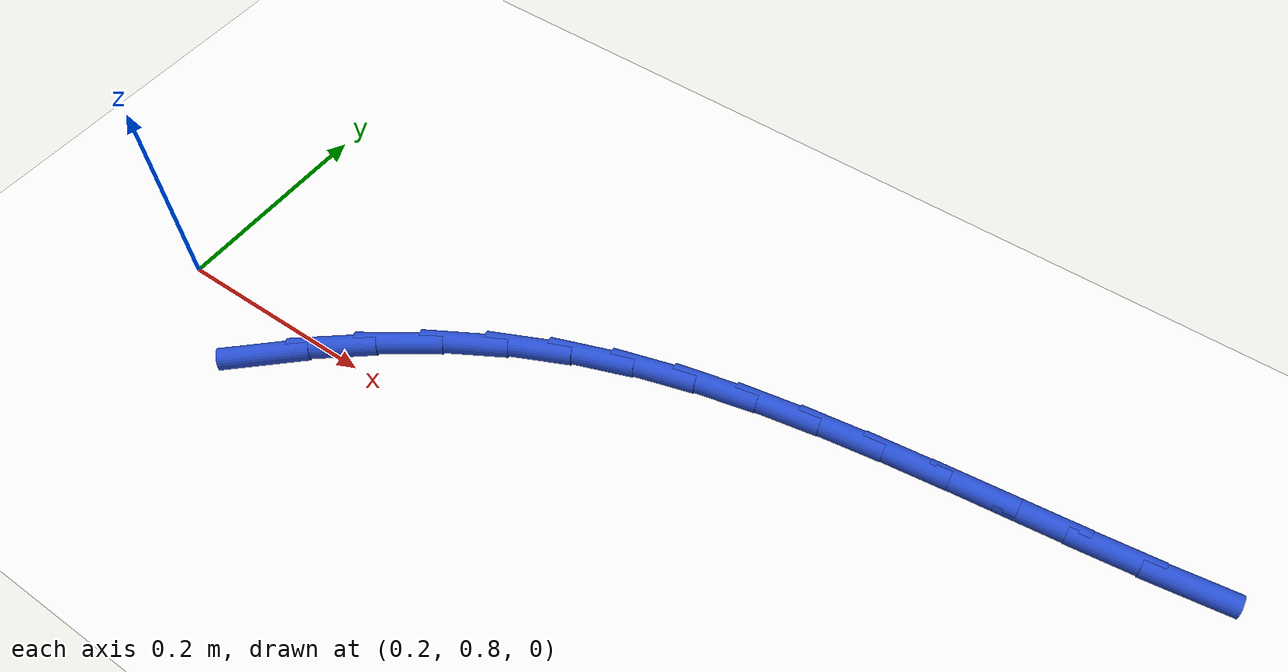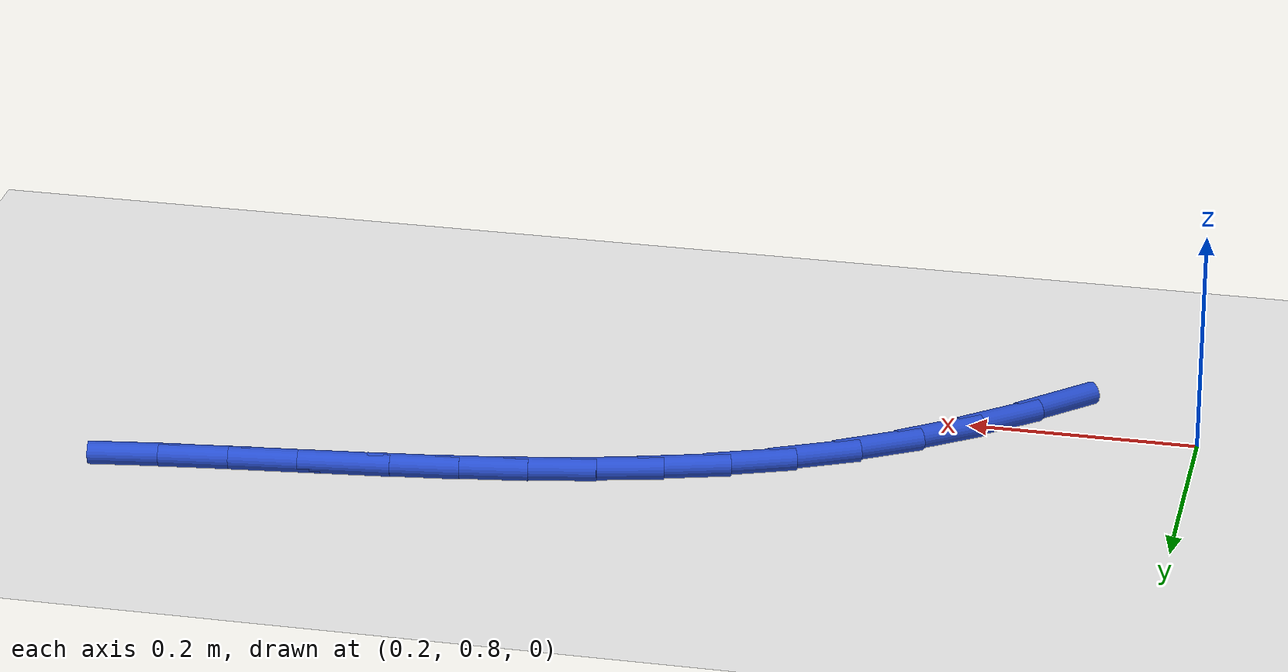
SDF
<sdf version="1.6">
 <world name="default">
  <model name="ground_plane">
   <static>1</static>
   <link name="link">
    <collision name="collision">
     <geometry><plane><normal>0 0 1</normal><size>100 100</size></plane></geometry>
     <surface><friction><ode><mu>100</mu><mu2>50</mu2></ode></friction></surface>
    </collision>
    <visual name="visual">
     <cast_shadows>0</cast_shadows>
     <geometry><plane><normal>0 0 1</normal><size>100 100</size></plane></geometry>
     <material>
      <script><uri>file://media/materials/scripts/gazebo.material</uri><name>Gazebo/WhiteGlow</name></script>
     </material>
    </visual>
   </link>
  </model>
  <model name="line">
   <link name="link_14">
    <pose>0.32917232432353305 0.7607423872514765 0.01 0 1.57 0.7416822931132596</pose>
    <collision name="collision">
     <geometry><cylinder><radius>0.01</radius><length>0.08</length></cylinder></geometry>
    </collision>
    <visual name="visual">
     <material>
      <script><name>Gazebo/Blue</name><uri>file://media/materials/scripts/gazebo.material</uri></script>
     </material>
     <geometry><cylinder><radius>0.01</radius><length>0.08</length></cylinder></geometry>
    </visual>
   </link>
   <link name="link_15">
    <pose>0.3737267148451764 0.801562191229716 0.01 0 1.57 0.6727538604862452</pose>
    <collision name="collision">
     <geometry><cylinder><radius>0.01</radius><length>0.08</length></cylinder></geometry>
    </collision>
    <visual name="visual">
     <material>
      <script><name>Gazebo/Blue</name><uri>file://media/materials/scripts/gazebo.material</uri></script>
     </material>
     <geometry><cylinder><radius>0.01</radius><length>0.08</length></cylinder></geometry>
    </visual>
   </link>
   <link name="link_16">
    <pose>0.42041091638203787 0.8387576585878747 0.01 0 1.57 0.5980623597929842</pose>
    <collision name="collision">
     <geometry><cylinder><radius>0.01</radius><length>0.08</length></cylinder></geometry>
    </collision>
    <visual name="visual">
     <material>
      <script><name>Gazebo/Blue</name><uri>file://media/materials/scripts/gazebo.material</uri></script>
     </material>
     <geometry><cylinder><radius>0.01</radius><length>0.08</length></cylinder></geometry>
    </visual>
   </link>
   <link name="link_17">
    <pose>0.4690853973969794 0.8719193893180062 0.01 0 1.57 0.5168608660060912</pose>
    <collision name="collision">
     <geometry><cylinder><radius>0.01</radius><length>0.08</length></cylinder></geometry>
    </collision>
    <visual name="visual">
     <material>
      <script><name>Gazebo/Blue</name><uri>file://media/materials/scripts/gazebo.material</uri></script>
     </material>
     <geometry><cylinder><radius>0.01</radius><length>0.08</length></cylinder></geometry>
    </visual>
   </link>
   <link name="link_18">
    <pose>0.5196106263528628 0.9006379834121642 0.01 0 1.57 0.42953666243389443</pose>
    <collision name="collision">
     <geometry><cylinder><radius>0.01</radius><length>0.08</length></cylinder></geometry>
    </collision>
    <visual name="visual">
     <material>
      <script><name>Gazebo/Blue</name><uri>file://media/materials/scripts/gazebo.material</uri></script>
     </material>
     <geometry><cylinder><radius>0.01</radius><length>0.08</length></cylinder></geometry>
    </visual>
   </link>
   <link name="link_19">
    <pose>0.5718466130342192 0.9245652177397866 0.01 0 1.57 0.3463660791445838</pose>
    <collision name="collision">
     <geometry><cylinder><radius>0.01</radius><length>0.08</length></cylinder></geometry>
    </collision>
    <visual name="visual">
     <material>
      <script><name>Gazebo/Blue</name><uri>file://media/materials/scripts/gazebo.material</uri></script>
     </material>
     <geometry><cylinder><radius>0.01</radius><length>0.08</length></cylinder></geometry>
    </visual>
   </link>
   <link name="link_20">
    <pose>0.6256486411211101 0.9439832201029837 0.01 0 1.57 0.2746948888140468</pose>
    <collision name="collision">
     <geometry><cylinder><radius>0.01</radius><length>0.08</length></cylinder></geometry>
    </collision>
    <visual name="visual">
     <material>
      <script><name>Gazebo/Blue</name><uri>file://media/materials/scripts/gazebo.material</uri></script>
     </material>
     <geometry><cylinder><radius>0.01</radius><length>0.08</length></cylinder></geometry>
    </visual>
   </link>
   <link name="link_21">
    <pose>0.6808692102872806 0.9595454391219513 0.01 0 1.57 0.2154781523947315</pose>
    <collision name="collision">
     <geometry><cylinder><radius>0.01</radius><length>0.08</length></cylinder></geometry>
    </collision>
    <visual name="visual">
     <material>
      <script><name>Gazebo/Blue</name><uri>file://media/materials/scripts/gazebo.material</uri></script>
     </material>
     <geometry><cylinder><radius>0.01</radius><length>0.08</length></cylinder></geometry>
    </visual>
   </link>
   <link name="link_22">
    <pose>0.7373607843838199 0.9719101013148849 0.01 0 1.57 0.1689092498649669</pose>
    <collision name="collision">
     <geometry><cylinder><radius>0.01</radius><length>0.08</length></cylinder></geometry>
    </collision>
    <visual name="visual">
     <material>
      <script><name>Gazebo/Blue</name><uri>file://media/materials/scripts/gazebo.material</uri></script>
     </material>
     <geometry><cylinder><radius>0.01</radius><length>0.08</length></cylinder></geometry>
    </visual>
   </link>
   <link name="link_23">
    <pose>0.7949758272618161 0.9817354331999799 0.01 0 1.57 0.13476607304117477</pose>
    <collision name="collision">
     <geometry><cylinder><radius>0.01</radius><length>0.08</length></cylinder></geometry>
    </collision>
    <visual name="visual">
     <material>
      <script><name>Gazebo/Blue</name><uri>file://media/materials/scripts/gazebo.material</uri></script>
     </material>
     <geometry><cylinder><radius>0.01</radius><length>0.08</length></cylinder></geometry>
    </visual>
   </link>
   <link name="link_24">
    <pose>0.8535668027723582 0.9896796612954318 0.01 0 1.57 0.11263837083167914</pose>
    <collision name="collision">
     <geometry><cylinder><radius>0.01</radius><length>0.08</length></cylinder></geometry>
    </collision>
    <visual name="visual">
     <material>
      <script><name>Gazebo/Blue</name><uri>file://media/materials/scripts/gazebo.material</uri></script>
     </material>
     <geometry><cylinder><radius>0.01</radius><length>0.08</length></cylinder></geometry>
    </visual>
   </link>
   <link name="link_25">
    <pose>0.9129861747665342 0.9964010121194355 0.01 0 1.57 0.1020844372671813</pose>
    <collision name="collision">
     <geometry><cylinder><radius>0.01</radius><length>0.08</length></cylinder></geometry>
    </collision>
    <visual name="visual">
     <material>
      <script><name>Gazebo/Blue</name><uri>file://media/materials/scripts/gazebo.material</uri></script>
     </material>
     <geometry><cylinder><radius>0.01</radius><length>0.08</length></cylinder></geometry>
    </visual>
   </link>
   <link name="link_26">
    <pose>0.973086407095433 1.0025577121901872 0.01 0 1.57 0.10271997349153297</pose>
    <collision name="collision">
     <geometry><cylinder><radius>0.01</radius><length>0.08</length></cylinder></geometry>
    </collision>
    <visual name="visual">
     <material>
      <script><name>Gazebo/Blue</name><uri>file://media/materials/scripts/gazebo.material</uri></script>
     </material>
     <geometry><cylinder><radius>0.01</radius><length>0.08</length></cylinder></geometry>
    </visual>
   </link>
   <link name="link_27">
    <pose>1.0337199636101428 1.0088079880258811 0.01 0 1.57 0.11425203515678173</pose>
    <collision name="collision">
     <geometry><cylinder><radius>0.01</radius><length>0.08</length></cylinder></geometry>
    </collision>
    <visual name="visual">
     <material>
      <script><name>Gazebo/Blue</name><uri>file://media/materials/scripts/gazebo.material</uri></script>
     </material>
     <geometry><cylinder><radius>0.01</radius><length>0.08</length></cylinder></geometry>
    </visual>
   </link>
   <link name="link_28">
    <pose>1.094739308161753 1.015810066144714 0.01 0 1.57 0.13646992339520458</pose>
    <collision name="collision">
     <geometry><cylinder><radius>0.01</radius><length>0.08</length></cylinder></geometry>
    </collision>
    <visual name="visual">
     <material>
      <script><name>Gazebo/Blue</name><uri>file://media/materials/scripts/gazebo.material</uri></script>
     </material>
     <geometry><cylinder><radius>0.01</radius><length>0.08</length></cylinder></geometry>
    </visual>
   </link>
  </model>
 </world>
</sdf>
